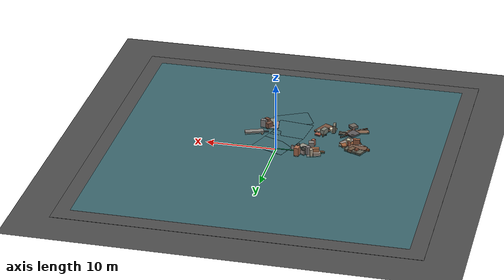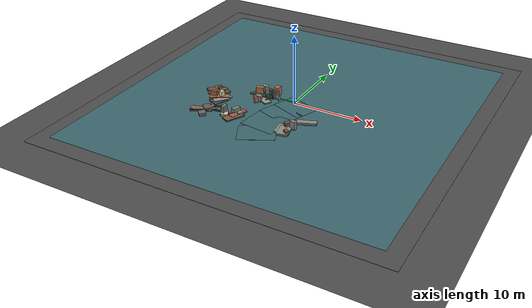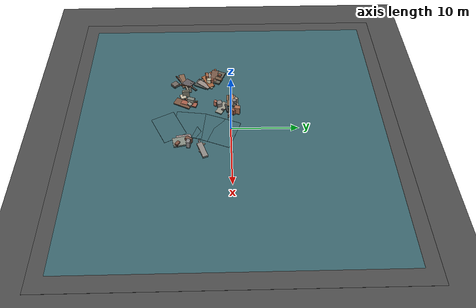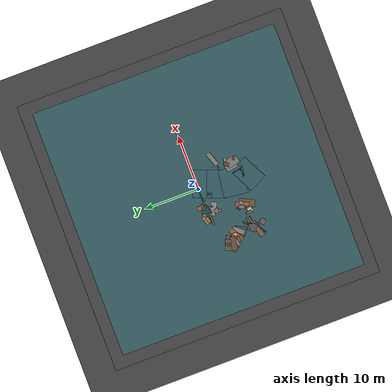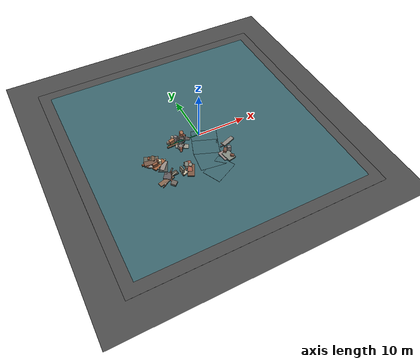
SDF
<sdf version="1.6">
 <world name="navitas_arena">
  <model name="ground_plane">
   <static>true</static>
   <link name="link">
    <collision name="collision">
     <geometry><plane><normal>0 0 1</normal><size>400 400</size></plane></geometry>
     <surface><friction><ode><mu>0.800</mu><mu2>0.800</mu2></ode></friction></surface>
    </collision>
    <visual name="visual">
     <cast_shadows>false</cast_shadows>
     <geometry><plane><normal>0 0 1</normal><size>400 400</size></plane></geometry>
     <material>
      <specular>0.04 0.04 0.04 1</specular>
      <script>
       <uri>file://media/materials/scripts/navitas_asphalt.material</uri>
       <name>Navitas/RealArenaAsphalt</name>
      </script>
     </material>
    </visual>
   </link>
  </model>
  <model name="gd_orta">
   <static>true</static>
   <pose>0.000 0.000 0.010 0 0 0.000</pose>
   <link name="link">
    <collision name="col"><geometry><box><size>50.000 50.000 0.020</size></box></geometry></collision>
    <visual name="vis">
     <geometry><box><size>50.000 50.000 0.020</size></box></geometry>
     <material>
      <specular>0.04 0.04 0.04 1</specular>
      <script>
       <uri>file://media/materials/scripts/navitas_asphalt.material</uri>
       <name>Navitas/RealArenaAsphalt</name>
      </script>
     </material>
    </visual>
   </link>
  </model>
  <model name="road_orta_2_5">
   <static>true</static>
   <pose>-0.507 -9.213 0.040 0 0 2.032</pose>
   <link name="link">
    <collision name="col"><geometry><box><size>3.609 5.000 0.020</size></box></geometry></collision>
    <visual name="vis">
     <geometry><box><size>3.609 5.000 0.020</size></box></geometry>
     <material>
      <specular>0.04 0.04 0.04 1</specular>
      <script>
       <uri>file://media/materials/scripts/navitas_asphalt.material</uri>
       <name>Navitas/RealArenaAsphalt</name>
      </script>
     </material>
    </visual>
   </link>
  </model>
  <model name="road_orta_2_6">
   <static>true</static>
   <pose>-0.887 -6.250 0.040 0 0 1.444</pose>
   <link name="link">
    <collision name="col"><geometry><box><size>4.428 5.000 0.020</size></box></geometry></collision>
    <visual name="vis">
     <geometry><box><size>4.428 5.000 0.020</size></box></geometry>
     <material>
      <specular>0.04 0.04 0.04 1</specular>
      <script>
       <uri>file://media/materials/scripts/navitas_asphalt.material</uri>
       <name>Navitas/RealArenaAsphalt</name>
      </script>
     </material>
    </visual>
   </link>
  </model>
  <model name="road_orta_2_7">
   <static>true</static>
   <pose>-0.231 -3.333 0.040 0 0 1.214</pose>
   <link name="link">
    <collision name="col"><geometry><box><size>3.390 5.000 0.020</size></box></geometry></collision>
    <visual name="vis">
     <geometry><box><size>3.390 5.000 0.020</size></box></geometry>
     <material>
      <specular>0.04 0.04 0.04 1</specular>
      <script>
       <uri>file://media/materials/scripts/navitas_asphalt.material</uri>
       <name>Navitas/RealArenaAsphalt</name>
      </script>
     </material>
    </visual>
   </link>
  </model>
  <model name="road_orta_2_8">
   <static>true</static>
   <pose>0.663 -1.000 0.040 0 0 1.196</pose>
   <link name="link">
    <collision name="col"><geometry><box><size>3.408 5.000 0.020</size></box></geometry></collision>
    <visual name="vis">
     <geometry><box><size>3.408 5.000 0.020</size></box></geometry>
     <material>
      <specular>0.04 0.04 0.04 1</specular>
      <script>
       <uri>file://media/materials/scripts/navitas_asphalt.material</uri>
       <name>Navitas/RealArenaAsphalt</name>
      </script>
     </material>
    </visual>
   </link>
  </model>
  <model name="deb_orta_29">
   <static>true</static>
   <pose>-9.742 -7.784 0.000 0 0 0</pose>
   <link name="link">
    <collision name="col_0">
     <pose>0.364 0.198 0.082 0.000 0.000 1.322</pose>
     <geometry><box><size>1.410 0.175 0.164</size></box></geometry>
    </collision>
    <visual name="vis_0">
     <pose>0.364 0.198 0.082 0.000 0.000 1.322</pose>
     <geometry><box><size>1.410 0.175 0.164</size></box></geometry>
     <material>
      <ambient>0.64 0.39 0.31 1</ambient>
      <diffuse>0.69 0.42 0.34 1</diffuse>
      <specular>0.05 0.05 0.045 1</specular>
     </material>
    </visual>
    <collision name="col_1">
     <pose>-0.782 -0.316 0.123 0.000 0.000 0.572</pose>
     <geometry><box><size>2.019 0.137 0.246</size></box></geometry>
    </collision>
    <visual name="vis_1">
     <pose>-0.782 -0.316 0.123 0.000 0.000 0.572</pose>
     <geometry><box><size>2.019 0.137 0.246</size></box></geometry>
     <material>
      <ambient>0.43 0.28 0.21 1</ambient>
      <diffuse>0.47 0.31 0.23 1</diffuse>
      <specular>0.05 0.05 0.045 1</specular>
     </material>
    </visual>
    <collision name="col_2">
     <pose>0.441 -0.883 0.241 0.000 0.000 2.304</pose>
     <geometry><box><size>0.977 0.944 0.481</size></box></geometry>
    </collision>
    <visual name="vis_2">
     <pose>0.441 -0.883 0.241 0.000 0.000 2.304</pose>
     <geometry><box><size>0.977 0.944 0.481</size></box></geometry>
     <material>
      <ambient>0.41 0.38 0.35 1</ambient>
      <diffuse>0.44 0.41 0.38 1</diffuse>
      <specular>0.05 0.05 0.045 1</specular>
     </material>
    </visual>
    <collision name="col_3">
     <pose>-0.523 0.350 0.101 0.000 0.000 0.266</pose>
     <geometry><box><size>3.023 0.882 0.203</size></box></geometry>
    </collision>
    <visual name="vis_3">
     <pose>-0.523 0.350 0.101 0.000 0.000 0.266</pose>
     <geometry><box><size>3.023 0.882 0.203</size></box></geometry>
     <material>
      <ambient>0.49 0.37 0.29 1</ambient>
      <diffuse>0.53 0.40 0.31 1</diffuse>
      <specular>0.05 0.05 0.045 1</specular>
     </material>
    </visual>
    <collision name="col_4">
     <pose>-0.404 -0.014 0.126 0.000 0.000 0.444</pose>
     <geometry><box><size>1.714 0.165 0.252</size></box></geometry>
    </collision>
    <visual name="vis_4">
     <pose>-0.404 -0.014 0.126 0.000 0.000 0.444</pose>
     <geometry><box><size>1.714 0.165 0.252</size></box></geometry>
     <material>
      <ambient>0.66 0.59 0.55 1</ambient>
      <diffuse>0.72 0.64 0.59 1</diffuse>
      <specular>0.05 0.05 0.045 1</specular>
     </material>
    </visual>
   </link>
  </model>
  <model name="deb_orta_33">
   <static>true</static>
   <pose>-4.897 -1.259 0.000 0 0 0</pose>
   <link name="link">
    <collision name="col_0">
     <pose>1.177 0.064 0.139 0.000 0.000 0.948</pose>
     <geometry><box><size>0.350 0.269 0.277</size></box></geometry>
    </collision>
    <visual name="vis_0">
     <pose>1.177 0.064 0.139 0.000 0.000 0.948</pose>
     <geometry><box><size>0.350 0.269 0.277</size></box></geometry>
     <material>
      <ambient>0.33 0.29 0.29 1</ambient>
      <diffuse>0.35 0.31 0.32 1</diffuse>
      <specular>0.05 0.05 0.045 1</specular>
     </material>
    </visual>
    <collision name="col_1">
     <pose>0.221 -0.430 0.447 0.000 0.000 1.780</pose>
     <geometry><box><size>0.757 0.797 0.893</size></box></geometry>
    </collision>
    <visual name="vis_1">
     <pose>0.221 -0.430 0.447 0.000 0.000 1.780</pose>
     <geometry><box><size>0.757 0.797 0.893</size></box></geometry>
     <material>
      <ambient>0.49 0.47 0.45 1</ambient>
      <diffuse>0.53 0.51 0.49 1</diffuse>
      <specular>0.05 0.05 0.045 1</specular>
     </material>
    </visual>
    <collision name="col_2">
     <pose>0.050 -1.002 0.486 0.000 0.000 1.039</pose>
     <geometry><box><size>0.471 0.441 0.973</size></box></geometry>
    </collision>
    <visual name="vis_2">
     <pose>0.050 -1.002 0.486 0.000 0.000 1.039</pose>
     <geometry><box><size>0.471 0.441 0.973</size></box></geometry>
     <material>
      <ambient>0.64 0.40 0.32 1</ambient>
      <diffuse>0.69 0.43 0.34 1</diffuse>
      <specular>0.05 0.05 0.045 1</specular>
     </material>
    </visual>
    <collision name="col_3">
     <pose>0.833 0.654 0.165 0.000 0.000 0.226</pose>
     <geometry><box><size>1.605 0.264 0.330</size></box></geometry>
    </collision>
    <visual name="vis_3">
     <pose>0.833 0.654 0.165 0.000 0.000 0.226</pose>
     <geometry><box><size>1.605 0.264 0.330</size></box></geometry>
     <material>
      <ambient>0.28 0.28 0.27 1</ambient>
      <diffuse>0.30 0.30 0.30 1</diffuse>
      <specular>0.05 0.05 0.045 1</specular>
     </material>
    </visual>
    <collision name="col_4">
     <pose>-0.767 0.897 0.135 0.000 0.000 0.047</pose>
     <geometry><box><size>2.331 0.305 0.270</size></box></geometry>
    </collision>
    <visual name="vis_4">
     <pose>-0.767 0.897 0.135 0.000 0.000 0.047</pose>
     <geometry><box><size>2.331 0.305 0.270</size></box></geometry>
     <material>
      <ambient>0.49 0.37 0.26 1</ambient>
      <diffuse>0.53 0.39 0.28 1</diffuse>
      <specular>0.05 0.05 0.045 1</specular>
     </material>
    </visual>
    <collision name="col_5">
     <pose>0.737 0.003 0.112 0.000 0.000 -0.531</pose>
     <geometry><box><size>2.442 1.039 0.224</size></box></geometry>
    </collision>
    <visual name="vis_5">
     <pose>0.737 0.003 0.112 0.000 0.000 -0.531</pose>
     <geometry><box><size>2.442 1.039 0.224</size></box></geometry>
     <material>
      <ambient>0.56 0.55 0.50 1</ambient>
      <diffuse>0.60 0.59 0.54 1</diffuse>
      <specular>0.05 0.05 0.045 1</specular>
     </material>
    </visual>
   </link>
  </model>
  <model name="deb_orta_50">
   <static>true</static>
   <pose>-8.942 -6.406 0.000 0 0 0</pose>
   <link name="link">
    <collision name="col_0">
     <pose>0.141 0.309 0.159 0.000 0.000 3.262</pose>
     <geometry><box><size>0.388 0.205 0.317</size></box></geometry>
    </collision>
    <visual name="vis_0">
     <pose>0.141 0.309 0.159 0.000 0.000 3.262</pose>
     <geometry><box><size>0.388 0.205 0.317</size></box></geometry>
     <material>
      <ambient>0.43 0.27 0.21 1</ambient>
      <diffuse>0.46 0.30 0.23 1</diffuse>
      <specular>0.05 0.05 0.045 1</specular>
     </material>
    </visual>
    <collision name="col_1">
     <pose>0.214 -0.203 0.100 0.000 0.000 3.246</pose>
     <geometry><box><size>2.157 0.878 0.200</size></box></geometry>
    </collision>
    <visual name="vis_1">
     <pose>0.214 -0.203 0.100 0.000 0.000 3.246</pose>
     <geometry><box><size>2.157 0.878 0.200</size></box></geometry>
     <material>
      <ambient>0.32 0.30 0.27 1</ambient>
      <diffuse>0.34 0.33 0.29 1</diffuse>
      <specular>0.05 0.05 0.045 1</specular>
     </material>
    </visual>
    <collision name="col_2">
     <pose>-0.697 -0.207 0.152 0.000 0.000 0.915</pose>
     <geometry><box><size>1.507 1.367 0.305</size></box></geometry>
    </collision>
    <visual name="vis_2">
     <pose>-0.697 -0.207 0.152 0.000 0.000 0.915</pose>
     <geometry><box><size>1.507 1.367 0.305</size></box></geometry>
     <material>
      <ambient>0.36 0.34 0.34 1</ambient>
      <diffuse>0.38 0.36 0.37 1</diffuse>
      <specular>0.05 0.05 0.045 1</specular>
     </material>
    </visual>
    <collision name="col_3">
     <pose>0.421 -0.239 0.063 0.000 0.000 2.149</pose>
     <geometry><box><size>0.261 0.240 0.126</size></box></geometry>
    </collision>
    <visual name="vis_3">
     <pose>0.421 -0.239 0.063 0.000 0.000 2.149</pose>
     <geometry><box><size>0.261 0.240 0.126</size></box></geometry>
     <material>
      <ambient>0.36 0.35 0.30 1</ambient>
      <diffuse>0.39 0.37 0.33 1</diffuse>
      <specular>0.05 0.05 0.045 1</specular>
     </material>
    </visual>
    <collision name="col_4">
     <pose>0.003 0.309 0.099 0.000 0.000 0.743</pose>
     <geometry><box><size>2.295 0.243 0.199</size></box></geometry>
    </collision>
    <visual name="vis_4">
     <pose>0.003 0.309 0.099 0.000 0.000 0.743</pose>
     <geometry><box><size>2.295 0.243 0.199</size></box></geometry>
     <material>
      <ambient>0.30 0.28 0.25 1</ambient>
      <diffuse>0.32 0.30 0.27 1</diffuse>
      <specular>0.05 0.05 0.045 1</specular>
     </material>
    </visual>
    <collision name="col_5">
     <pose>0.072 -0.127 0.064 0.000 0.000 0.730</pose>
     <geometry><box><size>0.188 0.199 0.128</size></box></geometry>
    </collision>
    <visual name="vis_5">
     <pose>0.072 -0.127 0.064 0.000 0.000 0.730</pose>
     <geometry><box><size>0.188 0.199 0.128</size></box></geometry>
     <material>
      <ambient>0.61 0.34 0.24 1</ambient>
      <diffuse>0.66 0.37 0.26 1</diffuse>
      <specular>0.05 0.05 0.045 1</specular>
     </material>
    </visual>
   </link>
  </model>
  <model name="deb_orta_72">
   <static>true</static>
   <pose>-9.271 -7.041 0.000 0 0 0</pose>
   <link name="link">
    <collision name="col_0">
     <pose>0.648 0.210 0.148 0.000 0.000 3.453</pose>
     <geometry><box><size>1.816 0.223 0.297</size></box></geometry>
    </collision>
    <visual name="vis_0">
     <pose>0.648 0.210 0.148 0.000 0.000 3.453</pose>
     <geometry><box><size>1.816 0.223 0.297</size></box></geometry>
     <material>
      <ambient>0.66 0.63 0.55 1</ambient>
      <diffuse>0.72 0.68 0.60 1</diffuse>
      <specular>0.05 0.05 0.045 1</specular>
     </material>
    </visual>
    <collision name="col_1">
     <pose>-0.529 0.760 0.067 0.000 0.000 2.756</pose>
     <geometry><box><size>0.213 0.304 0.134</size></box></geometry>
    </collision>
    <visual name="vis_1">
     <pose>-0.529 0.760 0.067 0.000 0.000 2.756</pose>
     <geometry><box><size>0.213 0.304 0.134</size></box></geometry>
     <material>
      <ambient>0.36 0.35 0.32 1</ambient>
      <diffuse>0.38 0.37 0.35 1</diffuse>
      <specular>0.05 0.05 0.045 1</specular>
     </material>
    </visual>
    <collision name="col_2">
     <pose>0.206 -0.012 0.156 0.000 0.000 1.282</pose>
     <geometry><box><size>1.482 0.139 0.312</size></box></geometry>
    </collision>
    <visual name="vis_2">
     <pose>0.206 -0.012 0.156 0.000 0.000 1.282</pose>
     <geometry><box><size>1.482 0.139 0.312</size></box></geometry>
     <material>
      <ambient>0.44 0.32 0.24 1</ambient>
      <diffuse>0.48 0.35 0.26 1</diffuse>
      <specular>0.05 0.05 0.045 1</specular>
     </material>
    </visual>
    <collision name="col_3">
     <pose>-0.180 0.669 0.150 0.000 0.000 2.356</pose>
     <geometry><box><size>0.199 0.234 0.301</size></box></geometry>
    </collision>
    <visual name="vis_3">
     <pose>-0.180 0.669 0.150 0.000 0.000 2.356</pose>
     <geometry><box><size>0.199 0.234 0.301</size></box></geometry>
     <material>
      <ambient>0.62 0.40 0.27 1</ambient>
      <diffuse>0.67 0.43 0.29 1</diffuse>
      <specular>0.05 0.05 0.045 1</specular>
     </material>
    </visual>
    <collision name="col_4">
     <pose>0.076 -1.231 0.088 0.000 0.000 1.915</pose>
     <geometry><box><size>0.444 0.276 0.175</size></box></geometry>
    </collision>
    <visual name="vis_4">
     <pose>0.076 -1.231 0.088 0.000 0.000 1.915</pose>
     <geometry><box><size>0.444 0.276 0.175</size></box></geometry>
     <material>
      <ambient>0.52 0.52 0.49 1</ambient>
      <diffuse>0.56 0.57 0.53 1</diffuse>
      <specular>0.05 0.05 0.045 1</specular>
     </material>
    </visual>
    <collision name="col_5">
     <pose>-0.442 0.941 0.170 0.000 0.000 2.890</pose>
     <geometry><box><size>0.411 0.167 0.340</size></box></geometry>
    </collision>
    <visual name="vis_5">
     <pose>-0.442 0.941 0.170 0.000 0.000 2.890</pose>
     <geometry><box><size>0.411 0.167 0.340</size></box></geometry>
     <material>
      <ambient>0.60 0.59 0.55 1</ambient>
      <diffuse>0.65 0.64 0.60 1</diffuse>
      <specular>0.05 0.05 0.045 1</specular>
     </material>
    </visual>
   </link>
  </model>
  <model name="deb_orta_80">
   <static>true</static>
   <pose>-5.438 0.410 0.000 0 0 0</pose>
   <link name="link">
    <collision name="col_0">
     <pose>0.249 0.479 0.571 0.000 0.000 2.101</pose>
     <geometry><box><size>0.526 0.476 1.142</size></box></geometry>
    </collision>
    <visual name="vis_0">
     <pose>0.249 0.479 0.571 0.000 0.000 2.101</pose>
     <geometry><box><size>0.526 0.476 1.142</size></box></geometry>
     <material>
      <ambient>0.67 0.61 0.52 1</ambient>
      <diffuse>0.72 0.66 0.57 1</diffuse>
      <specular>0.05 0.05 0.045 1</specular>
     </material>
    </visual>
    <collision name="col_1">
     <pose>0.098 0.554 0.098 0.000 0.000 3.443</pose>
     <geometry><box><size>1.458 0.219 0.197</size></box></geometry>
    </collision>
    <visual name="vis_1">
     <pose>0.098 0.554 0.098 0.000 0.000 3.443</pose>
     <geometry><box><size>1.458 0.219 0.197</size></box></geometry>
     <material>
      <ambient>0.74 0.69 0.64 1</ambient>
      <diffuse>0.80 0.74 0.69 1</diffuse>
      <specular>0.05 0.05 0.045 1</specular>
     </material>
    </visual>
    <collision name="col_2">
     <pose>-0.195 -0.137 0.530 0.000 0.000 3.401</pose>
     <geometry><box><size>1.084 0.558 1.059</size></box></geometry>
    </collision>
    <visual name="vis_2">
     <pose>-0.195 -0.137 0.530 0.000 0.000 3.401</pose>
     <geometry><box><size>1.084 0.558 1.059</size></box></geometry>
     <material>
      <ambient>0.65 0.42 0.28 1</ambient>
      <diffuse>0.70 0.46 0.31 1</diffuse>
      <specular>0.05 0.05 0.045 1</specular>
     </material>
    </visual>
    <collision name="col_3">
     <pose>-0.422 0.107 0.265 0.000 0.000 3.526</pose>
     <geometry><box><size>1.112 0.792 0.529</size></box></geometry>
    </collision>
    <visual name="vis_3">
     <pose>-0.422 0.107 0.265 0.000 0.000 3.526</pose>
     <geometry><box><size>1.112 0.792 0.529</size></box></geometry>
     <material>
      <ambient>0.61 0.55 0.51 1</ambient>
      <diffuse>0.66 0.60 0.55 1</diffuse>
      <specular>0.05 0.05 0.045 1</specular>
     </material>
    </visual>
    <collision name="col_4">
     <pose>-0.020 -0.109 0.091 0.000 0.000 2.409</pose>
     <geometry><box><size>0.227 0.242 0.181</size></box></geometry>
    </collision>
    <visual name="vis_4">
     <pose>-0.020 -0.109 0.091 0.000 0.000 2.409</pose>
     <geometry><box><size>0.227 0.242 0.181</size></box></geometry>
     <material>
      <ambient>0.51 0.49 0.46 1</ambient>
      <diffuse>0.55 0.53 0.50 1</diffuse>
      <specular>0.05 0.05 0.045 1</specular>
     </material>
    </visual>
   </link>
  </model>
  <model name="deb_orta_92">
   <static>true</static>
   <pose>-10.869 -1.926 0.000 0 0 0</pose>
   <link name="link">
    <collision name="col_0">
     <pose>-0.272 0.370 0.308 0.000 0.000 1.079</pose>
     <geometry><box><size>0.479 0.353 0.615</size></box></geometry>
    </collision>
    <visual name="vis_0">
     <pose>-0.272 0.370 0.308 0.000 0.000 1.079</pose>
     <geometry><box><size>0.479 0.353 0.615</size></box></geometry>
     <material>
      <ambient>0.58 0.33 0.23 1</ambient>
      <diffuse>0.62 0.36 0.25 1</diffuse>
      <specular>0.05 0.05 0.045 1</specular>
     </material>
    </visual>
    <collision name="col_1">
     <pose>0.210 -0.592 0.130 0.000 0.000 2.807</pose>
     <geometry><box><size>1.514 1.606 0.261</size></box></geometry>
    </collision>
    <visual name="vis_1">
     <pose>0.210 -0.592 0.130 0.000 0.000 2.807</pose>
     <geometry><box><size>1.514 1.606 0.261</size></box></geometry>
     <material>
      <ambient>0.36 0.35 0.36 1</ambient>
      <diffuse>0.39 0.38 0.39 1</diffuse>
      <specular>0.05 0.05 0.045 1</specular>
     </material>
    </visual>
    <collision name="col_2">
     <pose>0.033 0.153 0.172 0.000 0.000 2.746</pose>
     <geometry><box><size>2.660 1.329 0.344</size></box></geometry>
    </collision>
    <visual name="vis_2">
     <pose>0.033 0.153 0.172 0.000 0.000 2.746</pose>
     <geometry><box><size>2.660 1.329 0.344</size></box></geometry>
     <material>
      <ambient>0.37 0.37 0.33 1</ambient>
      <diffuse>0.40 0.40 0.35 1</diffuse>
      <specular>0.05 0.05 0.045 1</specular>
     </material>
    </visual>
    <collision name="col_3">
     <pose>0.450 0.149 0.243 0.000 0.000 1.067</pose>
     <geometry><box><size>1.122 0.643 0.485</size></box></geometry>
    </collision>
    <visual name="vis_3">
     <pose>0.450 0.149 0.243 0.000 0.000 1.067</pose>
     <geometry><box><size>1.122 0.643 0.485</size></box></geometry>
     <material>
      <ambient>0.43 0.34 0.25 1</ambient>
      <diffuse>0.46 0.36 0.27 1</diffuse>
      <specular>0.05 0.05 0.045 1</specular>
     </material>
    </visual>
    <collision name="col_4">
     <pose>-0.087 -0.332 0.066 0.000 0.000 1.100</pose>
     <geometry><box><size>2.101 0.185 0.132</size></box></geometry>
    </collision>
    <visual name="vis_4">
     <pose>-0.087 -0.332 0.066 0.000 0.000 1.100</pose>
     <geometry><box><size>2.101 0.185 0.132</size></box></geometry>
     <material>
      <ambient>0.48 0.46 0.47 1</ambient>
      <diffuse>0.52 0.50 0.50 1</diffuse>
      <specular>0.05 0.05 0.045 1</specular>
     </material>
    </visual>
    <collision name="col_5">
     <pose>-0.306 -0.554 0.191 0.000 0.000 3.004</pose>
     <geometry><box><size>2.510 1.038 0.383</size></box></geometry>
    </collision>
    <visual name="vis_5">
     <pose>-0.306 -0.554 0.191 0.000 0.000 3.004</pose>
     <geometry><box><size>2.510 1.038 0.383</size></box></geometry>
     <material>
      <ambient>0.43 0.32 0.26 1</ambient>
      <diffuse>0.47 0.35 0.28 1</diffuse>
      <specular>0.05 0.05 0.045 1</specular>
     </material>
    </visual>
   </link>
  </model>
  <model name="deb_orta_115">
   <static>true</static>
   <pose>-6.040 -6.941 0.000 0 0 0</pose>
   <link name="link">
    <collision name="col_0">
     <pose>-0.570 -0.380 0.176 0.000 0.000 3.499</pose>
     <geometry><box><size>0.938 0.843 0.352</size></box></geometry>
    </collision>
    <visual name="vis_0">
     <pose>-0.570 -0.380 0.176 0.000 0.000 3.499</pose>
     <geometry><box><size>0.938 0.843 0.352</size></box></geometry>
     <material>
      <ambient>0.74 0.70 0.62 1</ambient>
      <diffuse>0.80 0.76 0.67 1</diffuse>
      <specular>0.05 0.05 0.045 1</specular>
     </material>
    </visual>
    <collision name="col_1">
     <pose>0.781 -0.344 0.113 0.000 0.000 1.102</pose>
     <geometry><box><size>2.727 1.300 0.225</size></box></geometry>
    </collision>
    <visual name="vis_1">
     <pose>0.781 -0.344 0.113 0.000 0.000 1.102</pose>
     <geometry><box><size>2.727 1.300 0.225</size></box></geometry>
     <material>
      <ambient>0.45 0.31 0.24 1</ambient>
      <diffuse>0.48 0.34 0.26 1</diffuse>
      <specular>0.05 0.05 0.045 1</specular>
     </material>
    </visual>
    <collision name="col_2">
     <pose>-0.765 0.434 0.086 0.000 0.000 1.717</pose>
     <geometry><box><size>0.274 0.455 0.173</size></box></geometry>
    </collision>
    <visual name="vis_2">
     <pose>-0.765 0.434 0.086 0.000 0.000 1.717</pose>
     <geometry><box><size>0.274 0.455 0.173</size></box></geometry>
     <material>
      <ambient>0.71 0.66 0.56 1</ambient>
      <diffuse>0.76 0.71 0.61 1</diffuse>
      <specular>0.05 0.05 0.045 1</specular>
     </material>
    </visual>
    <collision name="col_3">
     <pose>-0.869 0.041 0.605 0.000 0.000 1.688</pose>
     <geometry><box><size>1.078 0.352 1.209</size></box></geometry>
    </collision>
    <visual name="vis_3">
     <pose>-0.869 0.041 0.605 0.000 0.000 1.688</pose>
     <geometry><box><size>1.078 0.352 1.209</size></box></geometry>
     <material>
      <ambient>0.45 0.44 0.38 1</ambient>
      <diffuse>0.48 0.47 0.41 1</diffuse>
      <specular>0.05 0.05 0.045 1</specular>
     </material>
    </visual>
   </link>
  </model>
  <model name="deb_orta_135">
   <static>true</static>
   <pose>-9.889 -4.066 0.000 0 0 0</pose>
   <link name="link">
    <collision name="col_0">
     <pose>0.430 -0.341 0.091 0.000 0.000 1.108</pose>
     <geometry><box><size>2.100 1.454 0.182</size></box></geometry>
    </collision>
    <visual name="vis_0">
     <pose>0.430 -0.341 0.091 0.000 0.000 1.108</pose>
     <geometry><box><size>2.100 1.454 0.182</size></box></geometry>
     <material>
      <ambient>0.30 0.32 0.30 1</ambient>
      <diffuse>0.32 0.34 0.32 1</diffuse>
      <specular>0.05 0.05 0.045 1</specular>
     </material>
    </visual>
    <collision name="col_1">
     <pose>-0.087 0.597 0.151 0.000 0.000 0.487</pose>
     <geometry><box><size>2.807 0.943 0.303</size></box></geometry>
    </collision>
    <visual name="vis_1">
     <pose>-0.087 0.597 0.151 0.000 0.000 0.487</pose>
     <geometry><box><size>2.807 0.943 0.303</size></box></geometry>
     <material>
      <ambient>0.59 0.36 0.23 1</ambient>
      <diffuse>0.64 0.39 0.24 1</diffuse>
      <specular>0.05 0.05 0.045 1</specular>
     </material>
    </visual>
    <collision name="col_2">
     <pose>0.582 -0.023 0.134 0.000 0.000 0.868</pose>
     <geometry><box><size>2.235 0.857 0.269</size></box></geometry>
    </collision>
    <visual name="vis_2">
     <pose>0.582 -0.023 0.134 0.000 0.000 0.868</pose>
     <geometry><box><size>2.235 0.857 0.269</size></box></geometry>
     <material>
      <ambient>0.56 0.51 0.48 1</ambient>
      <diffuse>0.60 0.55 0.52 1</diffuse>
      <specular>0.05 0.05 0.045 1</specular>
     </material>
    </visual>
    <collision name="col_3">
     <pose>-0.406 -0.197 0.076 0.000 0.000 1.028</pose>
     <geometry><box><size>1.624 0.133 0.151</size></box></geometry>
    </collision>
    <visual name="vis_3">
     <pose>-0.406 -0.197 0.076 0.000 0.000 1.028</pose>
     <geometry><box><size>1.624 0.133 0.151</size></box></geometry>
     <material>
      <ambient>0.47 0.45 0.44 1</ambient>
      <diffuse>0.51 0.49 0.47 1</diffuse>
      <specular>0.05 0.05 0.045 1</specular>
     </material>
    </visual>
    <collision name="col_4">
     <pose>-0.476 -0.209 0.121 0.000 0.000 0.083</pose>
     <geometry><box><size>0.283 0.362 0.242</size></box></geometry>
    </collision>
    <visual name="vis_4">
     <pose>-0.476 -0.209 0.121 0.000 0.000 0.083</pose>
     <geometry><box><size>0.283 0.362 0.242</size></box></geometry>
     <material>
      <ambient>0.61 0.58 0.50 1</ambient>
      <diffuse>0.66 0.63 0.54 1</diffuse>
      <specular>0.05 0.05 0.045 1</specular>
     </material>
    </visual>
   </link>
  </model>
  <model name="deb_orta_150">
   <static>true</static>
   <pose>-5.378 -6.470 0.000 0 0 0</pose>
   <link name="link">
    <collision name="col_0">
     <pose>0.495 0.241 0.217 0.000 0.000 2.363</pose>
     <geometry><box><size>0.588 0.715 0.434</size></box></geometry>
    </collision>
    <visual name="vis_0">
     <pose>0.495 0.241 0.217 0.000 0.000 2.363</pose>
     <geometry><box><size>0.588 0.715 0.434</size></box></geometry>
     <material>
      <ambient>0.54 0.53 0.49 1</ambient>
      <diffuse>0.58 0.58 0.53 1</diffuse>
      <specular>0.05 0.05 0.045 1</specular>
     </material>
    </visual>
    <collision name="col_1">
     <pose>-0.237 0.414 0.410 0.000 0.000 1.184</pose>
     <geometry><box><size>1.086 0.603 0.820</size></box></geometry>
    </collision>
    <visual name="vis_1">
     <pose>-0.237 0.414 0.410 0.000 0.000 1.184</pose>
     <geometry><box><size>1.086 0.603 0.820</size></box></geometry>
     <material>
      <ambient>0.45 0.47 0.43 1</ambient>
      <diffuse>0.49 0.51 0.47 1</diffuse>
      <specular>0.05 0.05 0.045 1</specular>
     </material>
    </visual>
    <collision name="col_2">
     <pose>-0.864 -0.447 0.101 0.000 0.000 0.812</pose>
     <geometry><box><size>2.361 0.311 0.203</size></box></geometry>
    </collision>
    <visual name="vis_2">
     <pose>-0.864 -0.447 0.101 0.000 0.000 0.812</pose>
     <geometry><box><size>2.361 0.311 0.203</size></box></geometry>
     <material>
      <ambient>0.41 0.28 0.21 1</ambient>
      <diffuse>0.45 0.31 0.23 1</diffuse>
      <specular>0.05 0.05 0.045 1</specular>
     </material>
    </visual>
    <collision name="col_3">
     <pose>-0.029 0.621 0.121 0.000 0.000 1.854</pose>
     <geometry><box><size>1.603 0.177 0.242</size></box></geometry>
    </collision>
    <visual name="vis_3">
     <pose>-0.029 0.621 0.121 0.000 0.000 1.854</pose>
     <geometry><box><size>1.603 0.177 0.242</size></box></geometry>
     <material>
      <ambient>0.41 0.30 0.20 1</ambient>
      <diffuse>0.44 0.32 0.21 1</diffuse>
      <specular>0.05 0.05 0.045 1</specular>
     </material>
    </visual>
    <collision name="col_4">
     <pose>-0.430 0.899 0.089 0.000 0.000 0.284</pose>
     <geometry><box><size>0.453 0.248 0.178</size></box></geometry>
    </collision>
    <visual name="vis_4">
     <pose>-0.430 0.899 0.089 0.000 0.000 0.284</pose>
     <geometry><box><size>0.453 0.248 0.178</size></box></geometry>
     <material>
      <ambient>0.29 0.28 0.27 1</ambient>
      <diffuse>0.31 0.30 0.29 1</diffuse>
      <specular>0.05 0.05 0.045 1</specular>
     </material>
    </visual>
    <collision name="col_5">
     <pose>0.216 0.128 0.127 0.000 0.000 1.239</pose>
     <geometry><box><size>2.474 0.832 0.253</size></box></geometry>
    </collision>
    <visual name="vis_5">
     <pose>0.216 0.128 0.127 0.000 0.000 1.239</pose>
     <geometry><box><size>2.474 0.832 0.253</size></box></geometry>
     <material>
      <ambient>0.61 0.35 0.27 1</ambient>
      <diffuse>0.66 0.37 0.29 1</diffuse>
      <specular>0.05 0.05 0.045 1</specular>
     </material>
    </visual>
   </link>
  </model>
  <model name="deb_orta_160">
   <static>true</static>
   <pose>3.450 -4.305 0.000 0 0 0</pose>
   <link name="link">
    <collision name="col_0">
     <pose>-0.369 -0.287 0.099 0.000 0.000 1.853</pose>
     <geometry><box><size>0.455 0.475 0.198</size></box></geometry>
    </collision>
    <visual name="vis_0">
     <pose>-0.369 -0.287 0.099 0.000 0.000 1.853</pose>
     <geometry><box><size>0.455 0.475 0.198</size></box></geometry>
     <material>
      <ambient>0.65 0.41 0.30 1</ambient>
      <diffuse>0.70 0.45 0.32 1</diffuse>
      <specular>0.05 0.05 0.045 1</specular>
     </material>
    </visual>
    <collision name="col_1">
     <pose>-0.516 0.240 0.073 0.000 0.000 1.878</pose>
     <geometry><box><size>0.473 0.243 0.147</size></box></geometry>
    </collision>
    <visual name="vis_1">
     <pose>-0.516 0.240 0.073 0.000 0.000 1.878</pose>
     <geometry><box><size>0.473 0.243 0.147</size></box></geometry>
     <material>
      <ambient>0.64 0.38 0.27 1</ambient>
      <diffuse>0.69 0.41 0.29 1</diffuse>
      <specular>0.05 0.05 0.045 1</specular>
     </material>
    </visual>
    <collision name="col_2">
     <pose>0.664 0.118 0.186 0.000 0.000 0.352</pose>
     <geometry><box><size>2.656 0.791 0.372</size></box></geometry>
    </collision>
    <visual name="vis_2">
     <pose>0.664 0.118 0.186 0.000 0.000 0.352</pose>
     <geometry><box><size>2.656 0.791 0.372</size></box></geometry>
     <material>
      <ambient>0.52 0.50 0.49 1</ambient>
      <diffuse>0.56 0.54 0.52 1</diffuse>
      <specular>0.05 0.05 0.045 1</specular>
     </material>
    </visual>
    <collision name="col_3">
     <pose>-0.371 -0.219 0.132 0.000 0.000 0.228</pose>
     <geometry><box><size>1.840 0.213 0.264</size></box></geometry>
    </collision>
    <visual name="vis_3">
     <pose>-0.371 -0.219 0.132 0.000 0.000 0.228</pose>
     <geometry><box><size>1.840 0.213 0.264</size></box></geometry>
     <material>
      <ambient>0.44 0.42 0.42 1</ambient>
      <diffuse>0.47 0.45 0.46 1</diffuse>
      <specular>0.05 0.05 0.045 1</specular>
     </material>
    </visual>
    <collision name="col_4">
     <pose>0.370 0.227 0.173 0.000 0.000 1.808</pose>
     <geometry><box><size>0.328 0.224 0.345</size></box></geometry>
    </collision>
    <visual name="vis_4">
     <pose>0.370 0.227 0.173 0.000 0.000 1.808</pose>
     <geometry><box><size>0.328 0.224 0.345</size></box></geometry>
     <material>
      <ambient>0.67 0.66 0.59 1</ambient>
      <diffuse>0.72 0.71 0.63 1</diffuse>
      <specular>0.05 0.05 0.045 1</specular>
     </material>
    </visual>
    <collision name="col_5">
     <pose>0.699 -0.131 0.081 0.000 0.000 2.462</pose>
     <geometry><box><size>0.518 0.388 0.162</size></box></geometry>
    </collision>
    <visual name="vis_5">
     <pose>0.699 -0.131 0.081 0.000 0.000 2.462</pose>
     <geometry><box><size>0.518 0.388 0.162</size></box></geometry>
     <material>
      <ambient>0.61 0.56 0.53 1</ambient>
      <diffuse>0.66 0.61 0.58 1</diffuse>
      <specular>0.05 0.05 0.045 1</specular>
     </material>
    </visual>
   </link>
  </model>
  <model name="deb_orta_233">
   <static>true</static>
   <pose>-10.146 -3.271 0.000 0 0 0</pose>
   <link name="link">
    <collision name="col_0">
     <pose>0.473 -0.021 0.515 0.000 0.000 1.371</pose>
     <geometry><box><size>0.622 0.470 1.030</size></box></geometry>
    </collision>
    <visual name="vis_0">
     <pose>0.473 -0.021 0.515 0.000 0.000 1.371</pose>
     <geometry><box><size>0.622 0.470 1.030</size></box></geometry>
     <material>
      <ambient>0.76 0.73 0.62 1</ambient>
      <diffuse>0.82 0.79 0.66 1</diffuse>
      <specular>0.05 0.05 0.045 1</specular>
     </material>
    </visual>
    <collision name="col_1">
     <pose>-0.065 -0.072 0.073 0.000 0.000 2.045</pose>
     <geometry><box><size>0.222 0.401 0.145</size></box></geometry>
    </collision>
    <visual name="vis_1">
     <pose>-0.065 -0.072 0.073 0.000 0.000 2.045</pose>
     <geometry><box><size>0.222 0.401 0.145</size></box></geometry>
     <material>
      <ambient>0.28 0.28 0.27 1</ambient>
      <diffuse>0.30 0.31 0.29 1</diffuse>
      <specular>0.05 0.05 0.045 1</specular>
     </material>
    </visual>
    <collision name="col_2">
     <pose>0.394 0.307 0.446 0.000 0.000 1.951</pose>
     <geometry><box><size>0.769 0.354 0.892</size></box></geometry>
    </collision>
    <visual name="vis_2">
     <pose>0.394 0.307 0.446 0.000 0.000 1.951</pose>
     <geometry><box><size>0.769 0.354 0.892</size></box></geometry>
     <material>
      <ambient>0.62 0.37 0.28 1</ambient>
      <diffuse>0.67 0.40 0.30 1</diffuse>
      <specular>0.05 0.05 0.045 1</specular>
     </material>
    </visual>
    <collision name="col_3">
     <pose>-0.584 -0.334 0.514 0.000 0.000 1.700</pose>
     <geometry><box><size>0.461 0.971 1.029</size></box></geometry>
    </collision>
    <visual name="vis_3">
     <pose>-0.584 -0.334 0.514 0.000 0.000 1.700</pose>
     <geometry><box><size>0.461 0.971 1.029</size></box></geometry>
     <material>
      <ambient>0.56 0.35 0.24 1</ambient>
      <diffuse>0.61 0.38 0.26 1</diffuse>
      <specular>0.05 0.05 0.045 1</specular>
     </material>
    </visual>
    <collision name="col_4">
     <pose>0.687 0.455 0.119 0.000 0.000 3.066</pose>
     <geometry><box><size>2.131 0.301 0.238</size></box></geometry>
    </collision>
    <visual name="vis_4">
     <pose>0.687 0.455 0.119 0.000 0.000 3.066</pose>
     <geometry><box><size>2.131 0.301 0.238</size></box></geometry>
     <material>
      <ambient>0.71 0.70 0.61 1</ambient>
      <diffuse>0.77 0.76 0.66 1</diffuse>
      <specular>0.05 0.05 0.045 1</specular>
     </material>
    </visual>
    <collision name="col_5">
     <pose>-0.456 0.235 0.133 0.000 0.000 2.775</pose>
     <geometry><box><size>2.470 1.539 0.267</size></box></geometry>
    </collision>
    <visual name="vis_5">
     <pose>-0.456 0.235 0.133 0.000 0.000 2.775</pose>
     <geometry><box><size>2.470 1.539 0.267</size></box></geometry>
     <material>
      <ambient>0.56 0.54 0.52 1</ambient>
      <diffuse>0.60 0.58 0.56 1</diffuse>
      <specular>0.05 0.05 0.045 1</specular>
     </material>
    </visual>
   </link>
  </model>
  <model name="deb_orta_267">
   <static>true</static>
   <pose>2.687 -6.951 0.000 0 0 0</pose>
   <link name="link">
    <collision name="col_0">
     <pose>-0.292 0.781 0.426 0.000 0.000 -0.636</pose>
     <geometry><box><size>0.582 0.968 0.851</size></box></geometry>
    </collision>
    <visual name="vis_0">
     <pose>-0.292 0.781 0.426 0.000 0.000 -0.636</pose>
     <geometry><box><size>0.582 0.968 0.851</size></box></geometry>
     <material>
      <ambient>0.43 0.30 0.24 1</ambient>
      <diffuse>0.47 0.32 0.26 1</diffuse>
      <specular>0.05 0.05 0.045 1</specular>
     </material>
    </visual>
    <collision name="col_1">
     <pose>0.324 -0.830 0.311 0.000 0.000 0.990</pose>
     <geometry><box><size>0.463 0.732 0.622</size></box></geometry>
    </collision>
    <visual name="vis_1">
     <pose>0.324 -0.830 0.311 0.000 0.000 0.990</pose>
     <geometry><box><size>0.463 0.732 0.622</size></box></geometry>
     <material>
      <ambient>0.46 0.30 0.23 1</ambient>
      <diffuse>0.50 0.32 0.25 1</diffuse>
      <specular>0.05 0.05 0.045 1</specular>
     </material>
    </visual>
    <collision name="col_2">
     <pose>-0.893 0.031 0.096 0.000 0.000 1.716</pose>
     <geometry><box><size>2.154 1.238 0.193</size></box></geometry>
    </collision>
    <visual name="vis_2">
     <pose>-0.893 0.031 0.096 0.000 0.000 1.716</pose>
     <geometry><box><size>2.154 1.238 0.193</size></box></geometry>
     <material>
      <ambient>0.55 0.49 0.48 1</ambient>
      <diffuse>0.59 0.53 0.52 1</diffuse>
      <specular>0.05 0.05 0.045 1</specular>
     </material>
    </visual>
    <collision name="col_3">
     <pose>-0.194 -0.435 0.167 0.000 0.000 1.768</pose>
     <geometry><box><size>2.185 1.560 0.334</size></box></geometry>
    </collision>
    <visual name="vis_3">
     <pose>-0.194 -0.435 0.167 0.000 0.000 1.768</pose>
     <geometry><box><size>2.185 1.560 0.334</size></box></geometry>
     <material>
      <ambient>0.48 0.51 0.47 1</ambient>
      <diffuse>0.52 0.55 0.51 1</diffuse>
      <specular>0.05 0.05 0.045 1</specular>
     </material>
    </visual>
    <collision name="col_4">
     <pose>0.504 0.765 0.612 0.000 0.000 1.400</pose>
     <geometry><box><size>0.526 0.724 1.224</size></box></geometry>
    </collision>
    <visual name="vis_4">
     <pose>0.504 0.765 0.612 0.000 0.000 1.400</pose>
     <geometry><box><size>0.526 0.724 1.224</size></box></geometry>
     <material>
      <ambient>0.49 0.49 0.48 1</ambient>
      <diffuse>0.53 0.52 0.52 1</diffuse>
      <specular>0.05 0.05 0.045 1</specular>
     </material>
    </visual>
   </link>
  </model>
  <model name="deb_orta_270">
   <static>true</static>
   <pose>-11.272 -2.618 0.000 0 0 0</pose>
   <link name="link">
    <collision name="col_0">
     <pose>-0.136 0.360 0.182 0.000 0.000 3.136</pose>
     <geometry><box><size>1.005 0.276 0.365</size></box></geometry>
    </collision>
    <visual name="vis_0">
     <pose>-0.136 0.360 0.182 0.000 0.000 3.136</pose>
     <geometry><box><size>1.005 0.276 0.365</size></box></geometry>
     <material>
      <ambient>0.43 0.44 0.37 1</ambient>
      <diffuse>0.46 0.48 0.40 1</diffuse>
      <specular>0.05 0.05 0.045 1</specular>
     </material>
    </visual>
    <collision name="col_1">
     <pose>0.081 0.632 0.126 0.000 0.000 2.214</pose>
     <geometry><box><size>1.566 1.529 0.252</size></box></geometry>
    </collision>
    <visual name="vis_1">
     <pose>0.081 0.632 0.126 0.000 0.000 2.214</pose>
     <geometry><box><size>1.566 1.529 0.252</size></box></geometry>
     <material>
      <ambient>0.54 0.54 0.50 1</ambient>
      <diffuse>0.59 0.58 0.54 1</diffuse>
      <specular>0.05 0.05 0.045 1</specular>
     </material>
    </visual>
    <collision name="col_2">
     <pose>-0.605 -0.098 0.147 0.000 0.000 3.285</pose>
     <geometry><box><size>0.322 0.186 0.294</size></box></geometry>
    </collision>
    <visual name="vis_2">
     <pose>-0.605 -0.098 0.147 0.000 0.000 3.285</pose>
     <geometry><box><size>0.322 0.186 0.294</size></box></geometry>
     <material>
      <ambient>0.52 0.54 0.45 1</ambient>
      <diffuse>0.56 0.58 0.48 1</diffuse>
      <specular>0.05 0.05 0.045 1</specular>
     </material>
    </visual>
    <collision name="col_3">
     <pose>0.561 0.112 0.143 0.000 0.000 4.029</pose>
     <geometry><box><size>0.408 0.309 0.286</size></box></geometry>
    </collision>
    <visual name="vis_3">
     <pose>0.561 0.112 0.143 0.000 0.000 4.029</pose>
     <geometry><box><size>0.408 0.309 0.286</size></box></geometry>
     <material>
      <ambient>0.60 0.56 0.50 1</ambient>
      <diffuse>0.64 0.61 0.54 1</diffuse>
      <specular>0.05 0.05 0.045 1</specular>
     </material>
    </visual>
    <collision name="col_4">
     <pose>-0.034 -0.170 0.145 0.000 0.000 3.519</pose>
     <geometry><box><size>1.846 0.225 0.290</size></box></geometry>
    </collision>
    <visual name="vis_4">
     <pose>-0.034 -0.170 0.145 0.000 0.000 3.519</pose>
     <geometry><box><size>1.846 0.225 0.290</size></box></geometry>
     <material>
      <ambient>0.62 0.37 0.25 1</ambient>
      <diffuse>0.67 0.40 0.27 1</diffuse>
      <specular>0.05 0.05 0.045 1</specular>
     </material>
    </visual>
    <collision name="col_5">
     <pose>-0.397 0.175 0.161 0.000 0.000 3.021</pose>
     <geometry><box><size>2.355 0.314 0.322</size></box></geometry>
    </collision>
    <visual name="vis_5">
     <pose>-0.397 0.175 0.161 0.000 0.000 3.021</pose>
     <geometry><box><size>2.355 0.314 0.322</size></box></geometry>
     <material>
      <ambient>0.59 0.32 0.18 1</ambient>
      <diffuse>0.63 0.35 0.20 1</diffuse>
      <specular>0.05 0.05 0.045 1</specular>
     </material>
    </visual>
   </link>
  </model>
  <model name="chic_orta_2">
   <static>true</static>
   <pose>-3.691 0.877 0.000 0 0 0</pose>
   <link name="link">
    <collision name="col_0">
     <pose>0.476 0.133 0.654 0.000 0.000 1.429</pose>
     <geometry><box><size>0.855 0.664 1.307</size></box></geometry>
    </collision>
    <visual name="vis_0">
     <pose>0.476 0.133 0.654 0.000 0.000 1.429</pose>
     <geometry><box><size>0.855 0.664 1.307</size></box></geometry>
     <material>
      <ambient>0.62 0.40 0.28 1</ambient>
      <diffuse>0.67 0.43 0.31 1</diffuse>
      <specular>0.05 0.05 0.045 1</specular>
     </material>
    </visual>
    <collision name="col_1">
     <pose>0.548 -0.989 0.572 0.000 0.000 1.155</pose>
     <geometry><box><size>0.517 0.292 1.145</size></box></geometry>
    </collision>
    <visual name="vis_1">
     <pose>0.548 -0.989 0.572 0.000 0.000 1.155</pose>
     <geometry><box><size>0.517 0.292 1.145</size></box></geometry>
     <material>
      <ambient>0.31 0.31 0.28 1</ambient>
      <diffuse>0.33 0.33 0.30 1</diffuse>
      <specular>0.05 0.05 0.045 1</specular>
     </material>
    </visual>
    <collision name="col_2">
     <pose>-0.354 -0.267 0.441 0.000 0.000 1.069</pose>
     <geometry><box><size>0.415 0.530 0.883</size></box></geometry>
    </collision>
    <visual name="vis_2">
     <pose>-0.354 -0.267 0.441 0.000 0.000 1.069</pose>
     <geometry><box><size>0.415 0.530 0.883</size></box></geometry>
     <material>
      <ambient>0.30 0.31 0.28 1</ambient>
      <diffuse>0.32 0.33 0.30 1</diffuse>
      <specular>0.05 0.05 0.045 1</specular>
     </material>
    </visual>
    <collision name="col_3">
     <pose>0.713 -0.431 0.485 0.000 0.000 0.591</pose>
     <geometry><box><size>0.485 0.460 0.970</size></box></geometry>
    </collision>
    <visual name="vis_3">
     <pose>0.713 -0.431 0.485 0.000 0.000 0.591</pose>
     <geometry><box><size>0.485 0.460 0.970</size></box></geometry>
     <material>
      <ambient>0.61 0.36 0.29 1</ambient>
      <diffuse>0.65 0.39 0.31 1</diffuse>
      <specular>0.05 0.05 0.045 1</specular>
     </material>
    </visual>
    <collision name="col_4">
     <pose>-0.994 -0.296 0.653 0.000 0.000 0.633</pose>
     <geometry><box><size>0.547 0.583 1.306</size></box></geometry>
    </collision>
    <visual name="vis_4">
     <pose>-0.994 -0.296 0.653 0.000 0.000 0.633</pose>
     <geometry><box><size>0.547 0.583 1.306</size></box></geometry>
     <material>
      <ambient>0.50 0.48 0.47 1</ambient>
      <diffuse>0.54 0.51 0.51 1</diffuse>
      <specular>0.05 0.05 0.045 1</specular>
     </material>
    </visual>
    <collision name="col_5">
     <pose>0.503 -0.626 0.381 0.000 0.000 -0.569</pose>
     <geometry><box><size>2.459 0.182 0.763</size></box></geometry>
    </collision>
    <visual name="vis_5">
     <pose>0.503 -0.626 0.381 0.000 0.000 -0.569</pose>
     <geometry><box><size>2.459 0.182 0.763</size></box></geometry>
     <material>
      <ambient>0.56 0.51 0.49 1</ambient>
      <diffuse>0.61 0.55 0.53 1</diffuse>
      <specular>0.05 0.05 0.045 1</specular>
     </material>
    </visual>
   </link>
  </model>
  <model name="iha_view_footprint">
   <static>false</static>
   <pose>0.000 0.000 0.130 0 0 0.000</pose>
   <link name="link">
    <gravity>false</gravity>
    <kinematic>true</kinematic>
    <visual name="vis">
     <geometry><box><size>45.612 45.612 0.035</size></box></geometry>
     <transparency>0.800</transparency>
     <material><ambient>0.00 0.85 1.00 0.20</ambient><diffuse>0.00 0.85 1.00 0.20</diffuse></material>
    </visual>
   </link>
  </model>
  <model name="ika_view_kolay_center">
   <static>false</static>
   <pose>0.000 0.000 0.160 0 0 0.000</pose>
   <link name="link">
    <gravity>false</gravity>
    <kinematic>true</kinematic>
    <visual name="vis">
     <geometry><box><size>13.000 0.180 0.040</size></box></geometry>
     <transparency>0.250</transparency>
     <material><ambient>0.00 1.00 0.55 0.75</ambient><diffuse>0.00 1.00 0.55 0.75</diffuse></material>
    </visual>
   </link>
  </model>
  <model name="ika_view_kolay_left">
   <static>false</static>
   <pose>0.000 0.000 0.160 0 0 0.000</pose>
   <link name="link">
    <gravity>false</gravity>
    <kinematic>true</kinematic>
    <visual name="vis">
     <geometry><box><size>13.000 0.140 0.040</size></box></geometry>
     <transparency>0.450</transparency>
     <material><ambient>0.00 1.00 0.55 0.55</ambient><diffuse>0.00 1.00 0.55 0.55</diffuse></material>
    </visual>
   </link>
  </model>
  <model name="ika_view_kolay_right">
   <static>false</static>
   <pose>0.000 0.000 0.160 0 0 0.000</pose>
   <link name="link">
    <gravity>false</gravity>
    <kinematic>true</kinematic>
    <visual name="vis">
     <geometry><box><size>13.000 0.140 0.040</size></box></geometry>
     <transparency>0.450</transparency>
     <material><ambient>0.00 1.00 0.55 0.55</ambient><diffuse>0.00 1.00 0.55 0.55</diffuse></material>
    </visual>
   </link>
  </model>
  <model name="rec_overview_cam">
   <static>true</static>
   <pose>0.000 0.000 210.000 0.0000 1.5708 1.5708</pose>
   <link name="link">
    <sensor name="cam" type="camera">
     <camera>
      <horizontal_fov>1.350</horizontal_fov>
      <image><width>1280</width><height>720</height><format>R8G8B8</format></image>
      <clip><near>0.1</near><far>500</far></clip>
      <save enabled="true"><path>/tmp/frames_overview</path></save>
     </camera>
     <always_on>1</always_on>
     <update_rate>4</update_rate>
    </sensor>
   </link>
  </model>
 </world>
</sdf>
